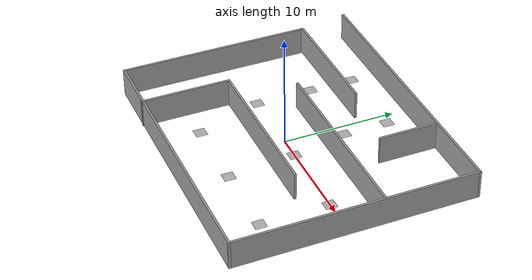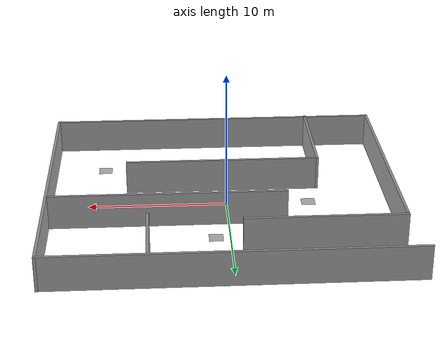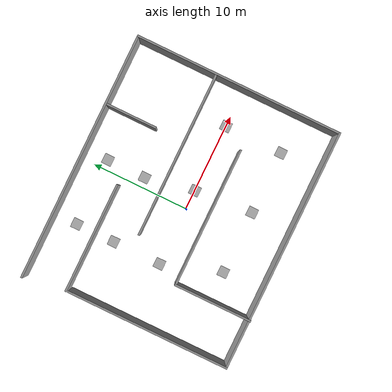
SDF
<sdf version="1.3">
 <world name="default">
  <include><uri>model://arrow</uri><pose>-4 -6 0 0 0 0</pose></include>
  <include><uri>model://arrow</uri><pose>2.5 -6 0 0 0 0</pose></include>
  <include><uri>model://arrow</uri><pose>9 -6 0 0 0 1.57</pose></include>
  <include><uri>model://arrow</uri><pose>9 0 0 0 0 3.14</pose></include>
  <include><uri>model://arrow</uri><pose>2 0 0 0 0 3.14</pose></include>
  <include><uri>model://arrow</uri><pose>-6 0 0 0 0 1.57</pose></include>
  <include><uri>model://arrow</uri><pose>-6 5 0 0 0 0</pose></include>
  <include><uri>model://arrow</uri><pose>1 5 0 0 0 1.57</pose></include>
  <include><uri>model://arrow</uri><pose>1 9 0 0 0 3.14</pose></include>
  <include><uri>model://arrow</uri><pose>-6 9 0 0 0 3.14</pose></include>
  <include><uri>model://sun</uri></include>
  <include><uri>model://simpleWorld</uri></include>
 </world>
</sdf>

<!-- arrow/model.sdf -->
<sdf version='1.4'>
  <model name='arrow'>
    <static>true</static>
    <link name='link'>
      <collision name='collision'>
        <geometry>
          <plane>
            <normal>0 0 1</normal>
            <size>1 1</size>
          </plane>
        </geometry>
        <surface>
          <friction>
            <ode>
              <mu>0.5</mu>
              <mu2>.5</mu2>
            </ode>
          </friction>
        </surface>
      </collision>

      <visual name='visual_0'>
        <pose>0 0 0 0 0 0</pose>

        <cast_shadows>false</cast_shadows>
        <geometry>
          <plane>
            <normal>0 0 1</normal>
            <size>1 1</size>
          </plane>
        </geometry>
        <material>
          <script>
            <uri>model://arrow/materials/scripts</uri>
            <uri>model://arrow/materials/textures</uri>
            <name>vrc/arrow</name>
          </script>
        </material>
      </visual>
    </link>
  </model>
</sdf>

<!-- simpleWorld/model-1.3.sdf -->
<sdf version='1.3'>
  <model name='simpleWorld'>
    <link name='Wall_1'>
      <collision name='Wall_1_Collision'>
        <geometry>
          <box>
            <size>16.718200 0.200000 2.500000</size>
          </box>
        </geometry>
        <pose>0.000000 0.000000 1.250000 0.000000 0.000000 0.000000</pose>
      </collision>
      <visual name='Wall_1_Visual'>
        <pose>0.000000 0.000000 1.250000 0.000000 0.000000 0.000000</pose>
        <geometry>
          <box>
            <size>16.718200 0.200000 2.500000</size>
          </box>
        </geometry>
        <material>
          <script>
            <uri>file://media/materials/scripts/gazebo.material</uri>
            <name>Gazebo/Grey</name>
          </script>
        </material>
      </visual>
      <velocity_decay>
        <linear>0.000000</linear>
        <angular>0.000000</angular>
      </velocity_decay>
      <pose>-11.863600 -1.672510 0.000000 0.000000 0.000000 -1.570800</pose>
    </link>
    <link name='Wall_10'>
      <collision name='Wall_10_Collision'>
        <geometry>
          <box>
            <size>5.178290 0.200000 2.500000</size>
          </box>
        </geometry>
        <pose>0.000000 0.000000 1.250000 0.000000 0.000000 0.000000</pose>
      </collision>
      <visual name='Wall_10_Visual'>
        <pose>0.000000 0.000000 1.250000 0.000000 0.000000 0.000000</pose>
        <geometry>
          <box>
            <size>5.178290 0.200000 2.500000</size>
          </box>
        </geometry>
        <material>
          <script>
            <uri>file://media/materials/scripts/gazebo.material</uri>
            <name>Gazebo/Grey</name>
          </script>
        </material>
      </visual>
      <velocity_decay>
        <linear>0.000000</linear>
        <angular>0.000000</angular>
      </velocity_decay>
      <pose>5.663710 8.495340 0.000000 0.000000 0.000000 -1.570800</pose>
    </link>
    <link name='Wall_12'>
      <collision name='Wall_12_Collision'>
        <geometry>
          <box>
            <size>7.992110 0.200000 2.500000</size>
          </box>
        </geometry>
        <pose>0.000000 0.000000 1.250000 0.000000 0.000000 0.000000</pose>
      </collision>
      <visual name='Wall_12_Visual'>
        <pose>0.000000 0.000000 1.250000 0.000000 0.000000 0.000000</pose>
        <geometry>
          <box>
            <size>7.992110 0.200000 2.500000</size>
          </box>
        </geometry>
        <material>
          <script>
            <uri>file://media/materials/scripts/gazebo.material</uri>
            <name>Gazebo/Grey</name>
          </script>
        </material>
      </visual>
      <velocity_decay>
        <linear>0.000000</linear>
        <angular>0.000000</angular>
      </velocity_decay>
      <pose>-6.890250 -6.114860 0.000000 0.000000 0.000000 1.570800</pose>
    </link>
    <link name='Wall_13'>
      <collision name='Wall_13_Collision'>
        <geometry>
          <box>
            <size>14.269100 0.200000 2.500000</size>
          </box>
        </geometry>
        <pose>0.000000 0.000000 1.250000 0.000000 0.000000 0.000000</pose>
      </collision>
      <visual name='Wall_13_Visual'>
        <pose>0.000000 0.000000 1.250000 0.000000 0.000000 0.000000</pose>
        <geometry>
          <box>
            <size>14.269100 0.200000 2.500000</size>
          </box>
        </geometry>
        <material>
          <script>
            <uri>file://media/materials/scripts/gazebo.material</uri>
            <name>Gazebo/Grey</name>
          </script>
        </material>
      </visual>
      <velocity_decay>
        <linear>0.000000</linear>
        <angular>0.000000</angular>
      </velocity_decay>
      <pose>0.144297 -2.218810 0.000000 0.000000 0.000000 0.000000</pose>
    </link>
    <link name='Wall_2'>
      <collision name='Wall_2_Collision'>
        <geometry>
          <box>
            <size>24.798500 0.200000 2.500000</size>
          </box>
        </geometry>
        <pose>0.000000 0.000000 1.250000 0.000000 0.000000 0.000000</pose>
      </collision>
      <visual name='Wall_2_Visual'>
        <pose>0.000000 0.000000 1.250000 0.000000 0.000000 0.000000</pose>
        <geometry>
          <box>
            <size>24.798500 0.200000 2.500000</size>
          </box>
        </geometry>
        <material>
          <script>
            <uri>file://media/materials/scripts/gazebo.material</uri>
            <name>Gazebo/Grey</name>
          </script>
        </material>
      </visual>
      <velocity_decay>
        <linear>0.000000</linear>
        <angular>0.000000</angular>
      </velocity_decay>
      <pose>0.435691 -9.931630 0.000000 0.000000 0.000000 0.000000</pose>
    </link>
    <link name='Wall_3'>
      <collision name='Wall_3_Collision'>
        <geometry>
          <box>
            <size>21.332600 0.200000 2.500000</size>
          </box>
        </geometry>
        <pose>0.000000 0.000000 1.250000 0.000000 0.000000 0.000000</pose>
      </collision>
      <visual name='Wall_3_Visual'>
        <pose>0.000000 0.000000 1.250000 0.000000 0.000000 0.000000</pose>
        <geometry>
          <box>
            <size>21.332600 0.200000 2.500000</size>
          </box>
        </geometry>
        <material>
          <script>
            <uri>file://media/materials/scripts/gazebo.material</uri>
            <name>Gazebo/Grey</name>
          </script>
        </material>
      </visual>
      <velocity_decay>
        <linear>0.000000</linear>
        <angular>0.000000</angular>
      </velocity_decay>
      <pose>12.734900 0.634654 0.000000 0.000000 0.000000 1.570800</pose>
    </link>
    <link name='Wall_4'>
      <collision name='Wall_4_Collision'>
        <geometry>
          <box>
            <size>25.452800 0.200000 2.500000</size>
          </box>
        </geometry>
        <pose>0.000000 0.000000 1.250000 0.000000 0.000000 0.000000</pose>
      </collision>
      <visual name='Wall_4_Visual'>
        <pose>0.000000 0.000000 1.250000 0.000000 0.000000 0.000000</pose>
        <geometry>
          <box>
            <size>25.452800 0.200000 2.500000</size>
          </box>
        </geometry>
        <material>
          <script>
            <uri>file://media/materials/scripts/gazebo.material</uri>
            <name>Gazebo/Grey</name>
          </script>
        </material>
      </visual>
      <velocity_decay>
        <linear>0.000000</linear>
        <angular>0.000000</angular>
      </velocity_decay>
      <pose>0.108526 11.200900 0.000000 0.000000 0.000000 3.141590</pose>
    </link>
    <link name='Wall_6'>
      <collision name='Wall_6_Collision'>
        <geometry>
          <box>
            <size>11.238800 0.200000 2.500000</size>
          </box>
        </geometry>
        <pose>0.000000 0.000000 1.250000 0.000000 0.000000 0.000000</pose>
      </collision>
      <visual name='Wall_6_Visual'>
        <pose>0.000000 0.000000 1.250000 0.000000 0.000000 0.000000</pose>
        <geometry>
          <box>
            <size>11.238800 0.200000 2.500000</size>
          </box>
        </geometry>
        <material>
          <script>
            <uri>file://media/materials/scripts/gazebo.material</uri>
            <name>Gazebo/Grey</name>
          </script>
        </material>
      </visual>
      <velocity_decay>
        <linear>0.000000</linear>
        <angular>0.000000</angular>
      </velocity_decay>
      <pose>-6.349130 6.871980 0.000000 0.000000 0.000000 0.000000</pose>
    </link>
    <link name='Wall_8'>
      <collision name='Wall_8_Collision'>
        <geometry>
          <box>
            <size>16.866500 0.200000 2.500000</size>
          </box>
        </geometry>
        <pose>0.000000 0.000000 1.250000 0.000000 0.000000 0.000000</pose>
      </collision>
      <visual name='Wall_8_Visual'>
        <pose>0.000000 0.000000 1.250000 0.000000 0.000000 0.000000</pose>
        <geometry>
          <box>
            <size>16.866500 0.200000 2.500000</size>
          </box>
        </geometry>
        <material>
          <script>
            <uri>file://media/materials/scripts/gazebo.material</uri>
            <name>Gazebo/Grey</name>
          </script>
        </material>
      </visual>
      <velocity_decay>
        <linear>0.000000</linear>
        <angular>0.000000</angular>
      </velocity_decay>
      <pose>4.256800 2.975930 0.000000 0.000000 0.000000 3.141590</pose>
    </link>
    <static>1</static>
  </model>
</sdf>
